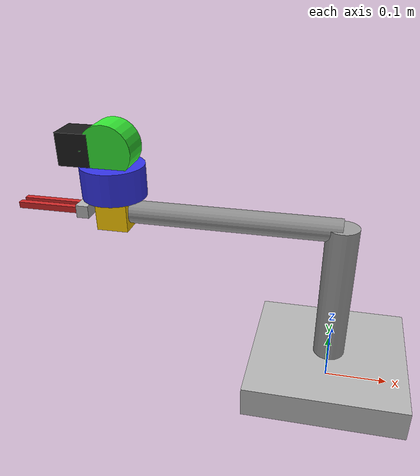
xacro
<?xml version="1.0"?>
<robot name="gimbal_mani" xmlns:xacro="http://www.ros.org/wiki/xacro">

  <xacro:macro name="inertial_box" params="mass x y z">
    <inertial>
      <mass value="${mass}"/>
      <origin xyz="0 0 0" rpy="0 0 0"/>
      <inertia ixx="${mass/12.0*(y*y + z*z)}"
               ixy="0.0"
               ixz="0.0"
               iyy="${mass/12.0*(x*x + z*z)}"
               iyz="0.0"
               izz="${mass/12.0*(x*x + y*y)}"/>
    </inertial>
  </xacro:macro>

  <!-- base_link -->
  <link name="base_link">
    <visual>
      <origin xyz="0 0 0.025" rpy="0 0 0"/>
      <geometry>
        <box size="0.25 0.25 0.05"/>
      </geometry>
      <material name="grey">
        <color rgba="0.7 0.7 0.7 1.0"/>
      </material>
    </visual>
    <collision>
      <geometry>
        <box size="0.25 0.25 0.05"/>
      </geometry>
    </collision>
    <xacro:inertial_box mass="1.0" x="0.25" y="0.25" z="0.05"/>
  </link>

  <gazebo>
      <plugin filename="libgazebo_ros2_control.so" name="gazebo_ros2_control">
        <parameters>$(find gimbal_mani)/config/controller.yaml</parameters>
      </plugin>
  </gazebo>

  <link name="gimbal_base_link"/>

  <!-- yaw_link -->
  <link name="gimbal_yaw_link">
    <visual>
      <geometry>
        <cylinder length="0.05" radius="0.05"/>
      </geometry>
      <material name="blue">
        <color rgba="0.2 0.2 0.9 1.0"/>
      </material>
    </visual>
    <collision>
      <geometry>
        <cylinder length="0.05" radius="0.05"/>
      </geometry>
    </collision>
    <xacro:inertial_box mass="0.5" x="0.1" y="0.1" z="0.05"/>
  </link>

  <!-- pitch_link -->
  <link name="gimbal_pitch_link">
    <visual>
      <origin xyz="0.0 0.0 0.0" rpy="${pi/2} ${pi/2} 0.0"/>
      <geometry>
        <cylinder length="0.05" radius="0.04"/>
      </geometry>
      <material name="green">
        <color rgba="0.2 0.9 0.2 1.0"/>
      </material>
    </visual>
    <collision>
      <geometry>
        <cylinder length="0.05" radius="0.04"/>
      </geometry>
    </collision>
    <xacro:inertial_box mass="0.4" x="0.08" y="0.08" z="0.05"/>
  </link>

  <!-- camera_link -->
  <link name="camera_link">
    <visual>
      <geometry>
        <box size="0.05 0.05 0.05"/>
      </geometry>
      <material name="black">
        <color rgba="0.1 0.1 0.1 1.0"/>
      </material>
    </visual>
    <collision>
      <geometry>
        <box size="0.05 0.05 0.05"/>
      </geometry>
    </collision>
    <xacro:inertial_box mass="0.2" x="0.05" y="0.05" z="0.05"/>
  </link>

  <!-- camera_optical_frame -->
  <link name="camera_optical_frame">
    <visual>
      <origin xyz="0 0 0" rpy="0 0 0"/>
      <geometry>
        <sphere radius="0.01"/>
      </geometry>
      <material name="yellow">
        <color rgba="1.0 1.0 0.0 1.0"/>
      </material>
    </visual>
  </link>

  <!-- 3-DOF manipulator (arm)   -->
  <!-- base_link -> arm_link1 -> arm_link2 -> wrist_link -->

  <!-- arm_link1 -->
  <link name="arm_link1">
    <visual>
      <origin xyz="0 0 0.05" rpy="0 0 0"/>
      <geometry>
        <cylinder length="0.25" radius="0.025"/>
      </geometry>
      <material name="grey">
        <color rgba="0.6 0.6 0.6 1.0"/>
      </material>
    </visual>
    <collision>
      <origin xyz="0 0 0.05" rpy="0 0 0"/>
      <geometry>
        <cylinder length="0.15" radius="0.05"/>
      </geometry>
    </collision>
    <xacro:inertial_box mass="0.6" x="0.04" y="0.04" z="0.10"/>
  </link>

  <!-- arm_link2 -->
  <link name="arm_link2">
    <visual>
      <origin xyz="0 0 0.175" rpy="0 0 0"/>
      <geometry>
        <cylinder length="0.35" radius="0.018"/>
      </geometry>
      <material name="grey">
        <color rgba="0.55 0.55 0.55 1.0"/>
      </material>
    </visual>
    <collision>
      <origin xyz="0 0 0.08" rpy="0 0 0"/>
      <geometry>
        <cylinder length="0.16" radius="0.018"/>
      </geometry>
    </collision>
    <xacro:inertial_box mass="0.5" x="0.036" y="0.036" z="0.16"/>
  </link>

  <!-- wrist_link (end-effector mounting link) -->
  <link name="wrist_link">
    <visual>
      <geometry>
        <box size="0.05 0.05 0.05"/>
      </geometry>
      <material name="yellow">
        <color rgba="1.0 0.8 0.0 1.0"/>
      </material>
    </visual>
    <collision>
      <geometry>
        <box size="0.05 0.05 0.05"/>
      </geometry>
    </collision>
    <xacro:inertial_box mass="0.2" x="0.05" y="0.05" z="0.05"/>
  </link>

  <link name="wrist_mount_link"/>

  <link name="gripper_base_link">
    <visual>
      <origin xyz="0 0 0" rpy="0 0 0"/>
      <geometry>
        <box size="0.02 0.04 0.02"/>
      </geometry>
      <material name="grey"/>
    </visual>
  </link>

  <link name="gripper_fixed_stick_link">
    <visual>
      <origin xyz="0.06 0.01 0" rpy="0 0 0"/>
      <geometry>
        <box size="0.10 0.01 0.01"/>
      </geometry>
      <material name="red"/>
    </visual>
  </link>

  <link name="gripper_moving_stick_link">
    <visual>
      <origin xyz="0.05 -0.01 0" rpy="0 0 0"/>
      <geometry>
        <box size="0.10 0.01 0.01"/>
      </geometry>
      <material name="red"/>
    </visual>
  </link>

  <joint name="wrist_to_wrist_mount" type="fixed">
    <parent link="wrist_link"/>
    <child link="wrist_mount_link"/>
    <origin xyz="0 0 0" rpy="0 0 0"/>
  </joint>

  <!-- joint 1: base -> arm_link1 (yaw) -->
  <joint name="arm_joint1" type="revolute">
    <parent link="base_link"/>
    <child link="arm_link1"/>
    <origin xyz="0 0 0.10" rpy="0 0 0"/>
    <axis xyz="0 0 1"/>
    <limit lower="-3.14159" upper="3.14159" effort="10.0" velocity="2.0"/>
  </joint>

  <!-- joint 2: arm_link1 -> arm_link2 (pitch) -->
  <joint name="arm_joint2" type="revolute">
    <parent link="arm_link1"/>
    <child link="arm_link2"/>
    <origin xyz="0 0 0.17" rpy="0 -1.570 0"/>
    <axis xyz="0 1 0"/>
    <dynamics damping="0.7" friction="0.1"/>
    <limit lower="-1.57" upper="1.57" effort="10.0" velocity="2.0"/>
  </joint>

  <!-- joint 3: arm_link2 -> wrist_link (pitch) -->
  <joint name="arm_joint3" type="revolute">
    <parent link="arm_link2"/>
    <child link="wrist_link"/>
    <origin xyz="0 0 0.35" rpy="0 1.570 0"/>
    <axis xyz="0 1 0"/>
    <dynamics damping="0.7" friction="0.1"/>
    <limit lower="-1.57" upper="1.57" effort="10.0" velocity="2.0"/>
  </joint>

  <joint name="wriat_mount_to_gripper_base" type="fixed">
    <parent link="wrist_mount_link"/>
    <child link="gripper_base_link"/>
    <origin xyz="-0.05 0 0" rpy="0 0 3.14"/>
  </joint>

  <joint name="gripper_fixed_joint" type="fixed">
    <parent link="gripper_base_link"/>
    <child link="gripper_fixed_stick_link"/>
    <origin xyz="0 0 0" rpy="0 0 0"/>
  </joint>

  <joint name="gripper_joint" type="revolute">
    <parent link="gripper_base_link"/>
    <child link="gripper_moving_stick_link"/>
    <origin xyz="0.01 0 0" rpy="0 0 0"/>
    <axis xyz="0 0 -1"/>
    <limit lower="0.0" upper="0.6" effort="1.0" velocity="2.0"/>
  </joint>

  <joint name="gimbal_base_joint" type="fixed">
    <parent link="wrist_mount_link"/>
    <child link="gimbal_base_link"/>
    <origin xyz="0 0 0" rpy="0 0 3.14"/>
  </joint>
  <!-- yaw joint (gimbal mounted on wrist_link) -->
  <joint name="gimbal_yaw_joint" type="revolute">
    <parent link="gimbal_base_link"/>
    <child link="gimbal_yaw_link"/>
    <origin xyz="0 0 0.05" rpy="0 0 0"/>
    <axis xyz="0 0 1"/>
    <limit lower="-2.5" upper="2.5" effort="5.0" velocity="2.0"/>
  </joint>

  <!-- pitch joint -->
  <joint name="gimbal_pitch_joint" type="revolute">
    <parent link="gimbal_yaw_link"/>
    <child link="gimbal_pitch_link"/>
    <origin xyz="0 0 0.05" rpy="0 0 0"/>
    <axis xyz="0 1 0"/>
    <dynamics damping="0.7" friction="0.1"/>
    <limit lower="-1.57" upper="0.5" effort="5.0" velocity="2.0"/>
  </joint>

  <!-- camera fixed -->
  <joint name="camera_fixed_joint" type="fixed">
    <parent link="gimbal_pitch_link"/>
    <child link="camera_link"/>
    <origin xyz="0.05 0 0" rpy="0 0 0"/>
  </joint>

  <!-- camera optical frame -->
  <joint name="camera_optical_joint" type="fixed">
    <parent link="camera_link"/>
    <child link="camera_optical_frame"/>
    <!-- ROS 카메라 표준 REP-103 optical frame 변환 -->
    <origin xyz="0.02 0 0" rpy="${-pi/2} 0 ${-pi/2}"/>
  </joint>

  <!-- Gazebo 카메라 센서 -->
  <gazebo reference="camera_link">
    <sensor type="camera" name="gimbal_camera">
      <always_on>true</always_on>
      <update_rate>30.0</update_rate>

      <camera name="gimbal_cam">
        <horizontal_fov>1.047</horizontal_fov>
        <image>
          <width>640</width>
          <height>480</height>
          <format>R8G8B8</format>
        </image>
        <clip>
          <near>0.05</near>
          <far>50.0</far>
        </clip>
      </camera>
      <plugin name="gazebo_ros_camera" filename="libgazebo_ros_camera.so">
        <ros>
          <namespace>/gimbal</namespace>
          <argument>image:=image_raw</argument>
          <argument>camera_info:=camera_info</argument>
        </ros>
        <frame_name>camera_optical_frame</frame_name>
      </plugin>
    </sensor>
  </gazebo>

  <ros2_control name="GimbalSystem" type="system">
    <hardware>
      <plugin>gazebo_ros2_control/GazeboSystem</plugin>
    </hardware>

    <joint name="arm_joint1">
      <command_interface name="position"/>
      <state_interface name="position"/>
      <state_interface name="velocity"/>
    </joint>

    <joint name="arm_joint2">
      <command_interface name="position"/>
      <state_interface name="position"/>
      <state_interface name="velocity"/>
    </joint>

    <joint name="arm_joint3">
      <command_interface name="position"/>
      <state_interface name="position"/>
      <state_interface name="velocity"/>
    </joint>

    <joint name="gimbal_yaw_joint">
      <command_interface name="position"/>
      <state_interface name="position"/>
      <state_interface name="velocity"/>
    </joint>

    <joint name="gimbal_pitch_joint">
      <command_interface name="position"/>
      <state_interface name="position"/>
      <state_interface name="velocity"/>
    </joint>
  </ros2_control>

  <link name="tof_link">
    <visual>
      <geometry>
        <box size="0.01 0.01 0.005"/>
      </geometry>
      <material name="black">
        <color rgba="0 0 0 1"/>
      </material>
    </visual>
    <collision>
      <geometry>
        <box size="0.01 0.01 0.005"/>
      </geometry>
    </collision>
    <inertial>
      <mass value="0.001"/> <inertia ixx="0.000001" ixy="0" ixz="0" iyy="0.000001" iyz="0" izz="0.000001"/>
    </inertial>
  </link>

  <joint name="tof_joint" type="fixed">
    <parent link="camera_link"/>
    <child link="tof_link"/>
    <origin xyz="0.025 0.0 -0.023" rpy="0 0 0"/>
  </joint>

  <gazebo reference="tof_link">
    <sensor type="ray" name="tof_sensor">
      <always_on>true</always_on>
      <pose>0 0 0 0 0 0</pose>
      <visualize>true</visualize> <update_rate>30</update_rate> <ray>
        <scan>
          <horizontal>
            <samples>1</samples>
            <resolution>1</resolution>
            <min_angle>-0.01</min_angle> <max_angle>0.01</max_angle>
          </horizontal>
          <vertical>
            <samples>1</samples>
            <resolution>1</resolution>
            <min_angle>-0.01</min_angle>
            <max_angle>0.01</max_angle>
          </vertical>
        </scan>
        <range>
          <min>0.02</min> <max>2.0</max>  <resolution>0.01</resolution>
        </range>
        <radiation_type>infrared</radiation_type>
      </ray>

      <plugin name="tof_controller" filename="libgazebo_ros_ray_sensor.so">
        <ros>
          <namespace>/gimbal</namespace>
          <remapping>~/out:=tof_distance</remapping>
        </ros>

        <output_type>sensor_msgs/LaserScan</output_type>

        <radiation_type>infrared</radiation_type>

        <frame_name>tof_link</frame_name>
      </plugin>
    </sensor>
  </gazebo>
</robot>
